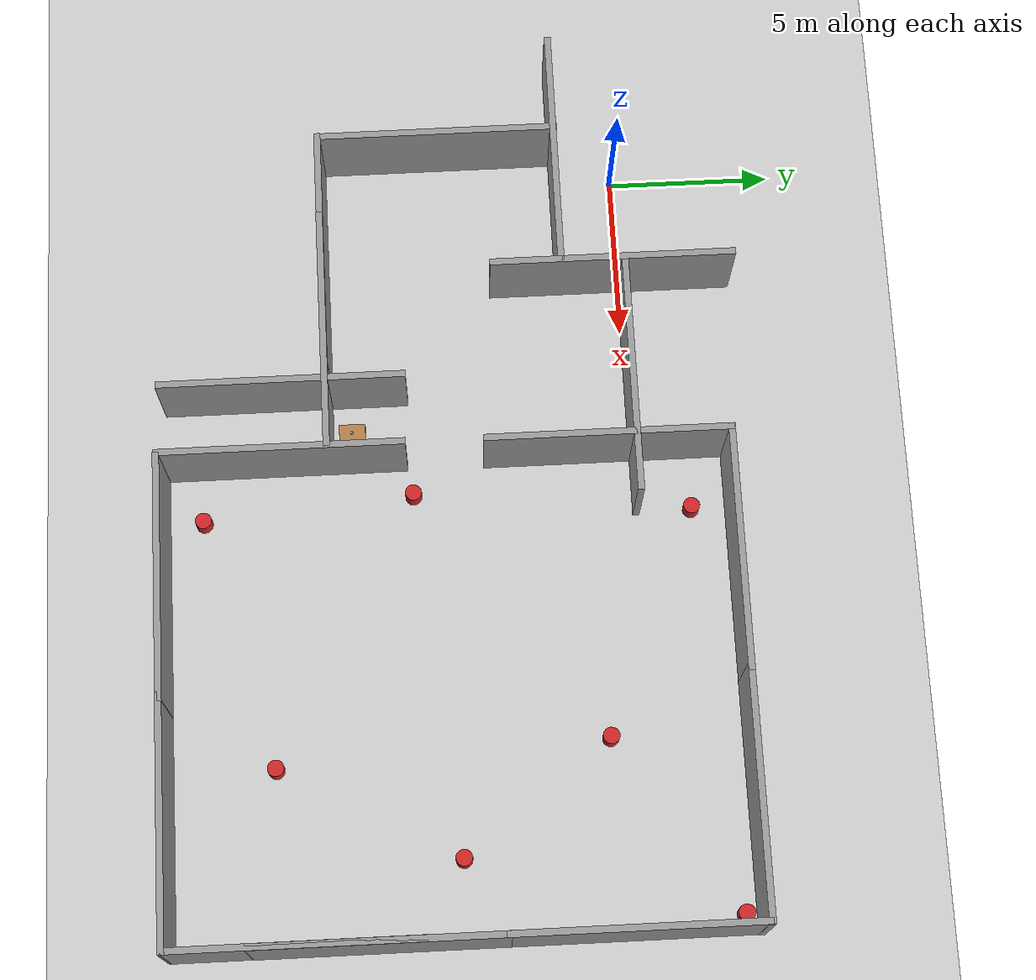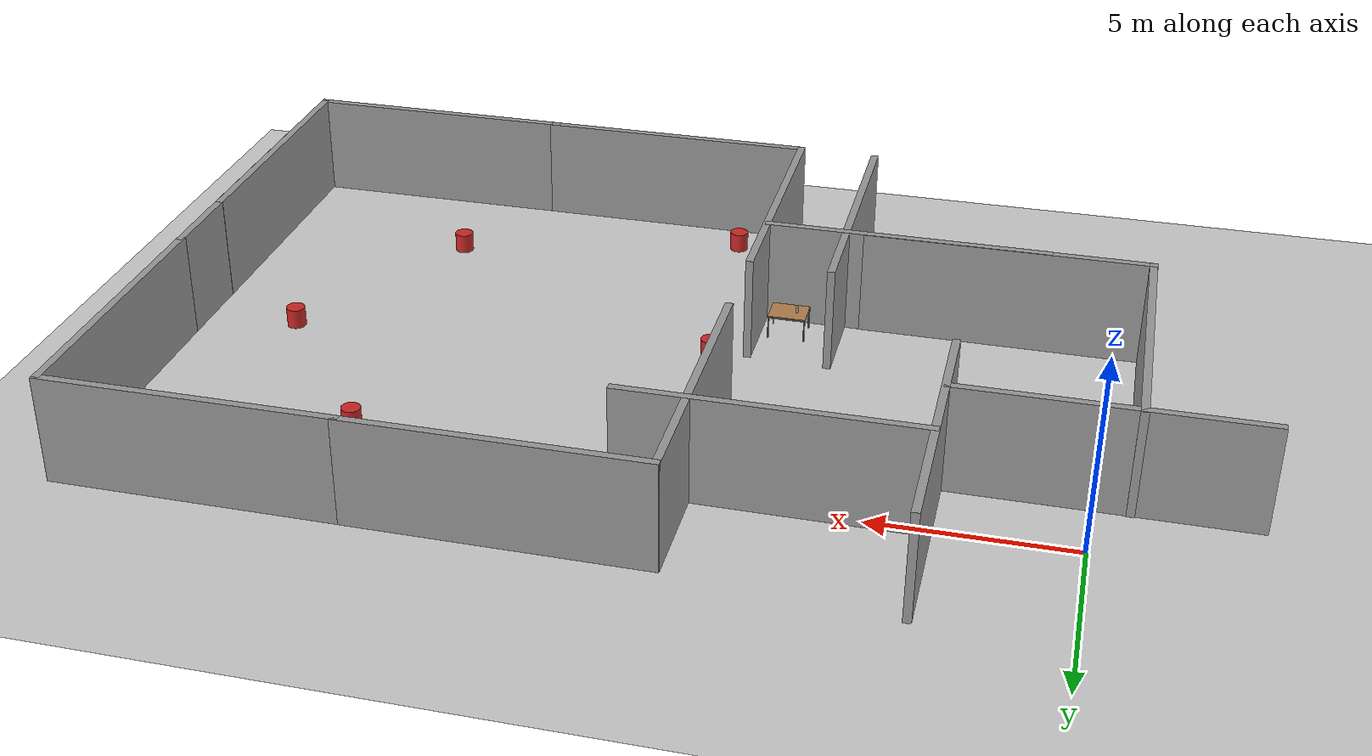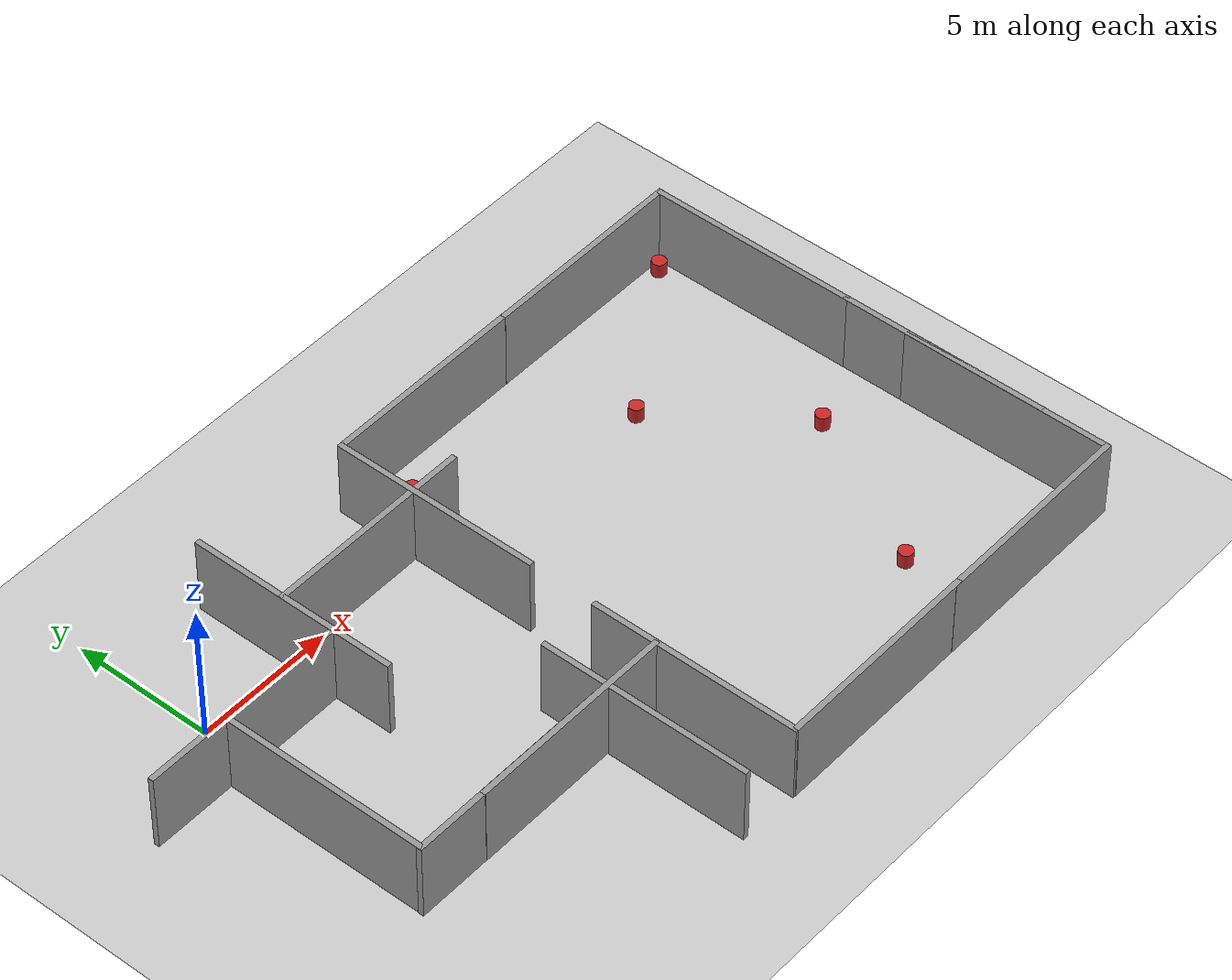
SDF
<sdf version="1.7">
 <world name="default">
  <model name="ground_plane">
   <static>1</static>
   <link name="link">
    <collision name="collision">
     <geometry><plane><normal>0 0 1</normal><size>100 100</size></plane></geometry>
     <surface>
      <contact><collide_bitmask>65535</collide_bitmask></contact>
      <friction><ode><mu>100</mu><mu2>50</mu2></ode></friction>
     </surface>
    </collision>
    <visual name="visual">
     <cast_shadows>0</cast_shadows>
     <geometry><plane><normal>0 0 1</normal><size>100 100</size></plane></geometry>
     <material>
      <script><uri>file://media/materials/scripts/gazebo.material</uri><name>Gazebo/Grey</name></script>
     </material>
    </visual>
   </link>
  </model>
  <light name="sun" type="directional">
   <pose>0 0 10 0 -0 0</pose>
   <diffuse>0.8 0.8 0.8 1</diffuse>
   <specular>0.2 0.2 0.2 1</specular>
   <attenuation>
    <range>1000</range>
    <constant>0.9</constant>
    <linear>0.01</linear>
    <quadratic>0.001</quadratic>
   </attenuation>
   <direction>-0.5 0.1 -0.9</direction>
   <spot><inner_angle>0</inner_angle><outer_angle>0</outer_angle><falloff>0</falloff></spot>
  </light>
  <gravity>0 0 -9.81</gravity>
  <magnetic_field>6e-06 2.3e-05 -4.2e-05</magnetic_field>
  <atmosphere type="adiabatic"/>
  <physics type="ode">
   <max_step_size>0.001</max_step_size>
   <real_time_factor>1</real_time_factor>
   <real_time_update_rate>1000</real_time_update_rate>
  </physics>
  <scene><ambient>0.4 0.4 0.4 1</ambient><background>0.7 0.7 0.7 1</background><shadows>1</shadows></scene>
  <spherical_coordinates>
   <surface_model>EARTH_WGS84</surface_model>
   <latitude_deg>0</latitude_deg>
   <longitude_deg>0</longitude_deg>
   <elevation>0</elevation>
   <heading_deg>0</heading_deg>
  </spherical_coordinates>
  <audio><device>default</device></audio>
  <model name="grey_wall_clone">
   <static>1</static>
   <link name="link">
    <pose>0 0 1.4 0 -0 0</pose>
    <collision name="collision"><geometry><box><size>7.5 0.2 2.8</size></box></geometry></collision>
    <visual name="visual">
     <cast_shadows>0</cast_shadows>
     <geometry><box><size>7.5 0.2 2.8</size></box></geometry>
     <material>
      <script>
       <uri>model://grey_wall/materials/scripts</uri>
       <uri>model://grey_wall/materials/textures</uri>
       <name>vrc/grey_wall</name>
      </script>
     </material>
    </visual>
   </link>
   <pose>2.74661 -9.14142 0 0 -0 0</pose>
  </model>
  <model name="grey_wall_clone_clone_clone">
   <static>1</static>
   <link name="link">
    <pose>0 0 1.4 0 -0 0</pose>
    <collision name="collision"><geometry><box><size>7.5 0.2 2.8</size></box></geometry></collision>
    <visual name="visual">
     <cast_shadows>0</cast_shadows>
     <geometry><box><size>7.5 0.2 2.8</size></box></geometry>
     <material>
      <script>
       <uri>model://grey_wall/materials/scripts</uri>
       <uri>model://grey_wall/materials/textures</uri>
       <name>vrc/grey_wall</name>
      </script>
     </material>
    </visual>
   </link>
   <pose>-0.893912 -5.46596 0 0 0 -1.57025</pose>
  </model>
  <model name="grey_wall_0">
   <static>1</static>
   <link name="link">
    <pose>0 0 1.4 0 -0 0</pose>
    <collision name="collision"><geometry><box><size>7.5 0.2 2.8</size></box></geometry></collision>
    <visual name="visual">
     <cast_shadows>0</cast_shadows>
     <geometry><box><size>7.5 0.2 2.8</size></box></geometry>
     <material>
      <script>
       <uri>model://grey_wall/materials/scripts</uri>
       <uri>model://grey_wall/materials/textures</uri>
       <name>vrc/grey_wall</name>
      </script>
     </material>
    </visual>
   </link>
   <pose>7.18187 0.107607 0 0 -0 0</pose>
  </model>
  <model name="grey_wall_0_clone">
   <static>1</static>
   <link name="link">
    <pose>0 0 1.4 0 -0 0</pose>
    <collision name="collision"><geometry><box><size>7.5 0.2 2.8</size></box></geometry></collision>
    <visual name="visual">
     <cast_shadows>0</cast_shadows>
     <geometry><box><size>7.5 0.2 2.8</size></box></geometry>
     <material>
      <script>
       <uri>model://grey_wall/materials/scripts</uri>
       <uri>model://grey_wall/materials/textures</uri>
       <name>vrc/grey_wall</name>
      </script>
     </material>
    </visual>
   </link>
   <pose>5.38112 -9.15192 0.00261 0 -0 0</pose>
  </model>
  <model name="grey_wall_clone_clone_clone_1_clone">
   <static>1</static>
   <link name="link">
    <pose>0 0 1.4 0 -0 0</pose>
    <collision name="collision"><geometry><box><size>7.5 0.2 2.8</size></box></geometry></collision>
    <visual name="visual">
     <cast_shadows>0</cast_shadows>
     <geometry><box><size>7.5 0.2 2.8</size></box></geometry>
     <material>
      <script>
       <uri>model://grey_wall/materials/scripts</uri>
       <uri>model://grey_wall/materials/textures</uri>
       <name>vrc/grey_wall</name>
      </script>
     </material>
    </visual>
   </link>
   <pose>9.10069 -0.729911 0 0 0 -1.57025</pose>
  </model>
  <model name="grey_wall_clone_clone_clone_1_clone_0">
   <static>1</static>
   <link name="link">
    <pose>0 0 1.4 0 -0 0</pose>
    <collision name="collision"><geometry><box><size>7.5 0.2 2.8</size></box></geometry></collision>
    <visual name="visual">
     <cast_shadows>0</cast_shadows>
     <geometry><box><size>7.5 0.2 2.8</size></box></geometry>
     <material>
      <script>
       <uri>model://grey_wall/materials/scripts</uri>
       <uri>model://grey_wall/materials/textures</uri>
       <name>vrc/grey_wall</name>
      </script>
     </material>
    </visual>
   </link>
   <pose>9.0872 -10.5593 0 0 0 -1.57025</pose>
  </model>
  <model name="grey_wall_1">
   <static>1</static>
   <link name="link">
    <pose>0 0 1.4 0 -0 0</pose>
    <collision name="collision"><geometry><box><size>7.5 0.2 2.8</size></box></geometry></collision>
    <visual name="visual">
     <cast_shadows>0</cast_shadows>
     <geometry><box><size>7.5 0.2 2.8</size></box></geometry>
     <material>
      <script>
       <uri>model://grey_wall/materials/scripts</uri>
       <uri>model://grey_wall/materials/textures</uri>
       <name>vrc/grey_wall</name>
      </script>
     </material>
    </visual>
   </link>
   <pose>12.7655 2.93058 0 0 -0 0</pose>
  </model>
  <model name="grey_wall_1_clone">
   <static>1</static>
   <link name="link">
    <pose>0 0 1.4 0 -0 0</pose>
    <collision name="collision"><geometry><box><size>7.5 0.2 2.8</size></box></geometry></collision>
    <visual name="visual">
     <cast_shadows>0</cast_shadows>
     <geometry><box><size>7.5 0.2 2.8</size></box></geometry>
     <material>
      <script>
       <uri>model://grey_wall/materials/scripts</uri>
       <uri>model://grey_wall/materials/textures</uri>
       <name>vrc/grey_wall</name>
      </script>
     </material>
    </visual>
   </link>
   <pose>20.0578 2.92724 0 0 -0 0</pose>
  </model>
  <model name="grey_wall_1_clone_0">
   <static>1</static>
   <link name="link">
    <pose>0 0 1.4 0 -0 0</pose>
    <collision name="collision"><geometry><box><size>7.5 0.2 2.8</size></box></geometry></collision>
    <visual name="visual">
     <cast_shadows>0</cast_shadows>
     <geometry><box><size>7.5 0.2 2.8</size></box></geometry>
     <material>
      <script>
       <uri>model://grey_wall/materials/scripts</uri>
       <uri>model://grey_wall/materials/textures</uri>
       <name>vrc/grey_wall</name>
      </script>
     </material>
    </visual>
   </link>
   <pose>12.8278 -14.2259 0 0 -0 0</pose>
  </model>
  <model name="grey_wall_1_clone_1">
   <static>1</static>
   <link name="link">
    <pose>0 0 1.4 0 -0 0</pose>
    <collision name="collision"><geometry><box><size>7.5 0.2 2.8</size></box></geometry></collision>
    <visual name="visual">
     <cast_shadows>0</cast_shadows>
     <geometry><box><size>7.5 0.2 2.8</size></box></geometry>
     <material>
      <script>
       <uri>model://grey_wall/materials/scripts</uri>
       <uri>model://grey_wall/materials/textures</uri>
       <name>vrc/grey_wall</name>
      </script>
     </material>
    </visual>
   </link>
   <pose>20.0487 -14.2311 0 0 -0 0</pose>
  </model>
  <model name="grey_wall_clone_clone_clone_1_clone_clone_3">
   <static>1</static>
   <link name="link">
    <pose>0 0 1.4 0 -0 0</pose>
    <collision name="collision"><geometry><box><size>7.5 0.2 2.8</size></box></geometry></collision>
    <visual name="visual">
     <cast_shadows>0</cast_shadows>
     <geometry><box><size>7.5 0.2 2.8</size></box></geometry>
     <material>
      <script>
       <uri>model://grey_wall/materials/scripts</uri>
       <uri>model://grey_wall/materials/textures</uri>
       <name>vrc/grey_wall</name>
      </script>
     </material>
    </visual>
   </link>
   <pose>23.7007 -0.784359 0 0 0 -1.57025</pose>
  </model>
  <model name="grey_wall_clone_clone_clone_1_clone_clone_3_clone">
   <static>1</static>
   <link name="link">
    <pose>0 0 1.4 0 -0 0</pose>
    <collision name="collision"><geometry><box><size>7.5 0.2 2.8</size></box></geometry></collision>
    <visual name="visual">
     <cast_shadows>0</cast_shadows>
     <geometry><box><size>7.5 0.2 2.8</size></box></geometry>
     <material>
      <script>
       <uri>model://grey_wall/materials/scripts</uri>
       <uri>model://grey_wall/materials/textures</uri>
       <name>vrc/grey_wall</name>
      </script>
     </material>
    </visual>
   </link>
   <pose>23.7051 -8.13067 0 0 0 -1.57025</pose>
  </model>
  <model name="grey_wall_clone_clone_clone_1_clone_clone_3_clone_0">
   <static>1</static>
   <link name="link">
    <pose>0 0 1.4 0 -0 0</pose>
    <collision name="collision"><geometry><box><size>7.5 0.2 2.8</size></box></geometry></collision>
    <visual name="visual">
     <cast_shadows>0</cast_shadows>
     <geometry><box><size>7.5 0.2 2.8</size></box></geometry>
     <material>
      <script>
       <uri>model://grey_wall/materials/scripts</uri>
       <uri>model://grey_wall/materials/textures</uri>
       <name>vrc/grey_wall</name>
      </script>
     </material>
    </visual>
   </link>
   <pose>23.7005 -10.5067 0 0 0 -1.57025</pose>
  </model>
  <model name="table">
   <static>1</static>
   <link name="link">
    <collision name="surface">
     <pose>0 0 0.8 0 -0 0</pose>
     <geometry><box><size>1 0.8 0.03</size></box></geometry>
    </collision>
    <visual name="visual1">
     <pose>0 0 0.8 0 -0 0</pose>
     <geometry><box><size>1 0.8 0.03</size></box></geometry>
     <material>
      <script><uri>file://media/materials/scripts/gazebo.material</uri><name>Gazebo/Wood</name></script>
     </material>
    </visual>
    <collision name="front_left_leg">
     <pose>0.48 0.38 0.4 0 -0 0</pose>
     <geometry><cylinder><radius>0.02</radius><length>0.8</length></cylinder></geometry>
    </collision>
    <visual name="front_left_leg">
     <pose>0.48 0.38 0.4 0 -0 0</pose>
     <geometry><cylinder><radius>0.02</radius><length>0.8</length></cylinder></geometry>
     <material>
      <script><uri>file://media/materials/scripts/gazebo.material</uri><name>Gazebo/Grey</name></script>
     </material>
    </visual>
    <collision name="front_right_leg">
     <pose>0.48 -0.38 0.4 0 -0 0</pose>
     <geometry><cylinder><radius>0.02</radius><length>0.8</length></cylinder></geometry>
    </collision>
    <visual name="front_right_leg">
     <pose>0.48 -0.38 0.4 0 -0 0</pose>
     <geometry><cylinder><radius>0.02</radius><length>0.8</length></cylinder></geometry>
     <material>
      <script><uri>file://media/materials/scripts/gazebo.material</uri><name>Gazebo/Grey</name></script>
     </material>
    </visual>
    <collision name="back_right_leg">
     <pose>-0.48 -0.38 0.4 0 -0 0</pose>
     <geometry><cylinder><radius>0.02</radius><length>0.8</length></cylinder></geometry>
    </collision>
    <visual name="back_right_leg">
     <pose>-0.48 -0.38 0.4 0 -0 0</pose>
     <geometry><cylinder><radius>0.02</radius><length>0.8</length></cylinder></geometry>
     <material>
      <script><uri>file://media/materials/scripts/gazebo.material</uri><name>Gazebo/Grey</name></script>
     </material>
    </visual>
    <collision name="back_left_leg">
     <pose>-0.48 0.38 0.4 0 -0 0</pose>
     <geometry><cylinder><radius>0.02</radius><length>0.8</length></cylinder></geometry>
    </collision>
    <visual name="back_left_leg">
     <pose>-0.48 0.38 0.4 0 -0 0</pose>
     <geometry><cylinder><radius>0.02</radius><length>0.8</length></cylinder></geometry>
     <material>
      <script><uri>file://media/materials/scripts/gazebo.material</uri><name>Gazebo/Grey</name></script>
     </material>
    </visual>
    <velocity_decay><linear>0</linear><angular>0</angular></velocity_decay>
   </link>
   <pose>8.2924 -8.45961 -0.211064 0 -0 0</pose>
  </model>
  <model name="sprite">
   <static>0</static>
   <link name="link">
    <inertial>
     <mass>0.25</mass>
     <inertia><ixx>0</ixx><ixy>0</ixy><ixz>0</ixz><iyy>0</iyy><iyz>0</iyz><izz>0</izz></inertia>
    </inertial>
    <collision name="collision">
     <pose>0 0 0.075 -3.14159 -0 0</pose>
     <geometry><cylinder><radius>0.04</radius><length>0.15</length></cylinder></geometry>
    </collision>
    <visual name="visual">
     <pose>0 0 0.075 -3.14159 -0 0</pose>
     <geometry><cylinder><radius>0.04</radius><length>0.15</length></cylinder></geometry>
     <material>
      <script>
       <uri>model://sprite/material/scripts</uri>
       <uri>model://sprite/material/textures</uri>
       <name>Custom/sprite</name>
      </script>
     </material>
    </visual>
    <velocity_decay><linear>0</linear><angular>0</angular></velocity_decay>
   </link>
   <pose>8.08258 -8.47526 0.603928 -1.2e-05 -1.1e-05 -2e-05</pose>
  </model>
  <model name="grey_wall_clone_clone_clone_1_clone_clone">
   <static>1</static>
   <link name="link">
    <pose>0 0 1.4 0 -0 0</pose>
    <collision name="collision"><geometry><box><size>7.5 0.2 2.8</size></box></geometry></collision>
    <visual name="visual">
     <cast_shadows>0</cast_shadows>
     <geometry><box><size>7.5 0.2 2.8</size></box></geometry>
     <material>
      <script>
       <uri>model://grey_wall/materials/scripts</uri>
       <uri>model://grey_wall/materials/textures</uri>
       <name>vrc/grey_wall</name>
      </script>
     </material>
    </visual>
   </link>
   <pose>3.51682 -0.264527 0 0 0 -1.57025</pose>
  </model>
  <model name="grey_wall_clone_clone_clone_1_clone_0_clone">
   <static>1</static>
   <link name="link">
    <pose>0 0 1.4 0 -0 0</pose>
    <collision name="collision"><geometry><box><size>7.5 0.2 2.8</size></box></geometry></collision>
    <visual name="visual">
     <cast_shadows>0</cast_shadows>
     <geometry><box><size>7.5 0.2 2.8</size></box></geometry>
     <material>
      <script>
       <uri>model://grey_wall/materials/scripts</uri>
       <uri>model://grey_wall/materials/textures</uri>
       <name>vrc/grey_wall</name>
      </script>
     </material>
    </visual>
   </link>
   <pose>6.96985 -10.4741 0 0 0 -1.57025</pose>
  </model>
  <model name="grey_wall_0_clone_0">
   <static>1</static>
   <link name="link">
    <pose>0 0 1.4 0 -0 0</pose>
    <collision name="collision"><geometry><box><size>7.5 0.2 2.8</size></box></geometry></collision>
    <visual name="visual">
     <cast_shadows>0</cast_shadows>
     <geometry><box><size>7.5 0.2 2.8</size></box></geometry>
     <material>
      <script>
       <uri>model://grey_wall/materials/scripts</uri>
       <uri>model://grey_wall/materials/textures</uri>
       <name>vrc/grey_wall</name>
      </script>
     </material>
    </visual>
   </link>
   <pose>-0.189903 -1.84133 0 0 -0 0</pose>
  </model>
  <model name="env_exam_cylinder2_0">
   <static>1</static>
   <link name="link">
    <gravity>0</gravity>
    <inertial>
     <mass>1</mass>
     <inertia>
      <ixx>0.000363958</ixx>
      <ixy>0</ixy>
      <ixz>0</ixz>
      <iyy>0.000363958</iyy>
      <iyz>0</iyz>
      <izz>0.0006125</izz>
     </inertia>
    </inertial>
    <visual name="visual">
     <geometry><cylinder><radius>0.25</radius><length>1</length></cylinder></geometry>
     <material>
      <script><uri>file://media/materials/scripts/gazebo.material</uri><name>Gazebo/Red</name></script>
     </material>
    </visual>
    <collision name="collision">
     <geometry><cylinder><radius>0.25</radius><length>1</length></cylinder></geometry>
     <surface><friction><ode><mu>0</mu><mu2>0</mu2></ode></friction></surface>
    </collision>
   </link>
   <pose>10.8491 1.78859 0 0 -0 0</pose>
  </model>
  <model name="env_exam_cylinder2_1">
   <static>1</static>
   <link name="link">
    <gravity>0</gravity>
    <inertial>
     <mass>1</mass>
     <inertia>
      <ixx>0.000363958</ixx>
      <ixy>0</ixy>
      <ixz>0</ixz>
      <iyy>0.000363958</iyy>
      <iyz>0</iyz>
      <izz>0.0006125</izz>
     </inertia>
    </inertial>
    <visual name="visual">
     <geometry><cylinder><radius>0.25</radius><length>1</length></cylinder></geometry>
     <material>
      <script><uri>file://media/materials/scripts/gazebo.material</uri><name>Gazebo/Red</name></script>
     </material>
    </visual>
    <collision name="collision">
     <geometry><cylinder><radius>0.25</radius><length>1</length></cylinder></geometry>
     <surface><friction><ode><mu>0</mu><mu2>0</mu2></ode></friction></surface>
    </collision>
   </link>
   <pose>10.6124 -13.0832 0 0 -0 0</pose>
  </model>
  <model name="env_exam_cylinder1_1">
   <static>1</static>
   <link name="link">
    <gravity>0</gravity>
    <inertial>
     <mass>1</mass>
     <inertia>
      <ixx>0.000363958</ixx>
      <ixy>0</ixy>
      <ixz>0</ixz>
      <iyy>0.000363958</iyy>
      <iyz>0</iyz>
      <izz>0.0006125</izz>
     </inertia>
    </inertial>
    <visual name="visual">
     <geometry><cylinder><radius>0.25</radius><length>1</length></cylinder></geometry>
     <material>
      <script><uri>file://media/materials/scripts/gazebo.material</uri><name>Gazebo/Red</name></script>
     </material>
    </visual>
    <collision name="collision">
     <geometry><cylinder><radius>0.25</radius><length>1</length></cylinder></geometry>
     <surface><friction><ode><mu>0</mu><mu2>0</mu2></ode></friction></surface>
    </collision>
   </link>
   <pose>17.8146 -1.10176 0 0 -0 0</pose>
  </model>
  <model name="env_exam_cylinder1_2">
   <static>1</static>
   <link name="link">
    <gravity>0</gravity>
    <inertial>
     <mass>1</mass>
     <inertia>
      <ixx>0.000363958</ixx>
      <ixy>0</ixy>
      <ixz>0</ixz>
      <iyy>0.000363958</iyy>
      <iyz>0</iyz>
      <izz>0.0006125</izz>
     </inertia>
    </inertial>
    <visual name="visual">
     <geometry><cylinder><radius>0.25</radius><length>1</length></cylinder></geometry>
     <material>
      <script><uri>file://media/materials/scripts/gazebo.material</uri><name>Gazebo/Red</name></script>
     </material>
    </visual>
    <collision name="collision">
     <geometry><cylinder><radius>0.25</radius><length>1</length></cylinder></geometry>
     <surface><friction><ode><mu>0</mu><mu2>0</mu2></ode></friction></surface>
    </collision>
   </link>
   <pose>10.0322 -6.6643 0 0 -0 0</pose>
  </model>
  <model name="env_exam_cylinder1_3">
   <static>1</static>
   <link name="link">
    <gravity>0</gravity>
    <inertial>
     <mass>1</mass>
     <inertia>
      <ixx>0.000363958</ixx>
      <ixy>0</ixy>
      <ixz>0</ixz>
      <iyy>0.000363958</iyy>
      <iyz>0</iyz>
      <izz>0.0006125</izz>
     </inertia>
    </inertial>
    <visual name="visual">
     <geometry><cylinder><radius>0.25</radius><length>1</length></cylinder></geometry>
     <material>
      <script><uri>file://media/materials/scripts/gazebo.material</uri><name>Gazebo/Red</name></script>
     </material>
    </visual>
    <collision name="collision">
     <geometry><cylinder><radius>0.25</radius><length>1</length></cylinder></geometry>
     <surface><friction><ode><mu>0</mu><mu2>0</mu2></ode></friction></surface>
    </collision>
   </link>
   <pose>18.3066 -11.0725 0 0 -0 0</pose>
  </model>
  <model name="env_exam_cylinder2_2">
   <static>1</static>
   <link name="link">
    <gravity>0</gravity>
    <inertial>
     <mass>1</mass>
     <inertia>
      <ixx>0.000363958</ixx>
      <ixy>0</ixy>
      <ixz>0</ixz>
      <iyy>0.000363958</iyy>
      <iyz>0</iyz>
      <izz>0.0006125</izz>
     </inertia>
    </inertial>
    <visual name="visual">
     <geometry><cylinder><radius>0.25</radius><length>1</length></cylinder></geometry>
     <material>
      <script><uri>file://media/materials/scripts/gazebo.material</uri><name>Gazebo/Red</name></script>
     </material>
    </visual>
    <collision name="collision">
     <geometry><cylinder><radius>0.25</radius><length>1</length></cylinder></geometry>
     <surface><friction><ode><mu>0</mu><mu2>0</mu2></ode></friction></surface>
    </collision>
   </link>
   <pose>21.208 -5.6323 0 0 -0 0</pose>
  </model>
  <model name="env_exam_cylinder1_4">
   <static>1</static>
   <link name="link">
    <gravity>0</gravity>
    <inertial>
     <mass>1</mass>
     <inertia>
      <ixx>0.000363958</ixx>
      <ixy>0</ixy>
      <ixz>0</ixz>
      <iyy>0.000363958</iyy>
      <iyz>0</iyz>
      <izz>0.0006125</izz>
     </inertia>
    </inertial>
    <visual name="visual">
     <geometry><cylinder><radius>0.25</radius><length>1</length></cylinder></geometry>
     <material>
      <script><uri>file://media/materials/scripts/gazebo.material</uri><name>Gazebo/Red</name></script>
     </material>
    </visual>
    <collision name="collision">
     <geometry><cylinder><radius>0.25</radius><length>1</length></cylinder></geometry>
     <surface><friction><ode><mu>0</mu><mu2>0</mu2></ode></friction></surface>
    </collision>
   </link>
   <pose>23.1965 2.49791 0 0 -0 0</pose>
  </model>
 </world>
</sdf>
